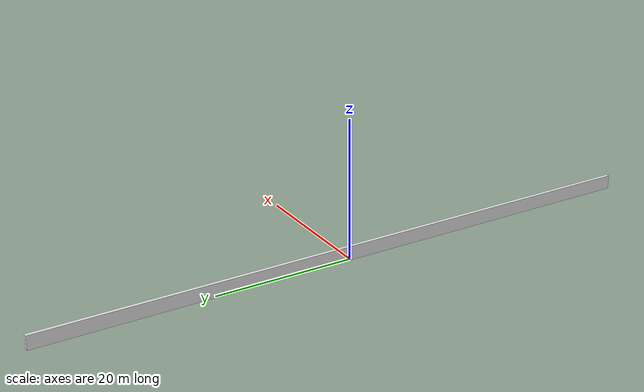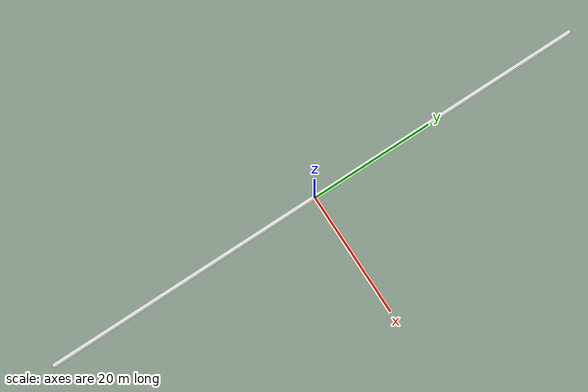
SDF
<?xml version="1.0" ?>
<sdf version="1.5">
  <model name="mbzirc_block_100">
    <static>true</static>
    <link name="link">
	<pose frame=''>0.0 0 1.0 0 0.0 0</pose>
      <collision name="collision">
        <geometry>
          <box>
            <size>0.5 90.0 2.0</size>
          </box>
        </geometry>
      </collision>
      <visual name="visual">
        <geometry>
          <box>
            <size>0.5 90.0 2.0</size>
          </box>
        </geometry>
        <material>
          <script>
            <name>Gazebo/White</name>
            <uri>file://media/materials/scripts/gazebo.material</uri>
          </script>
        </material>
      </visual>
    </link>
  </model>
</sdf>
